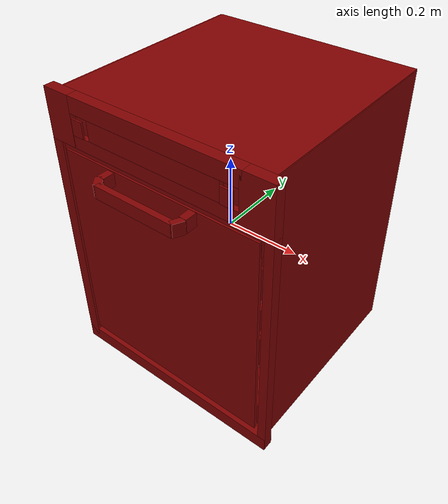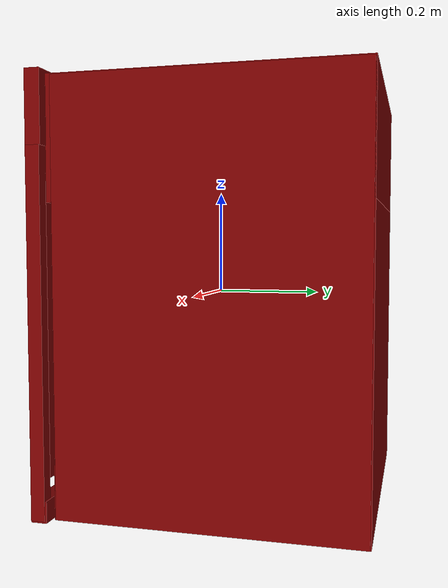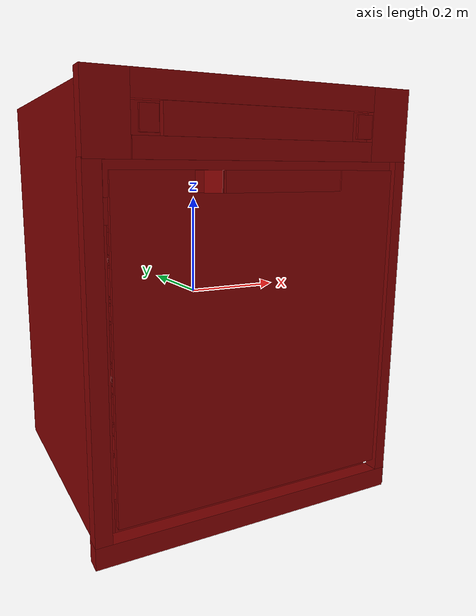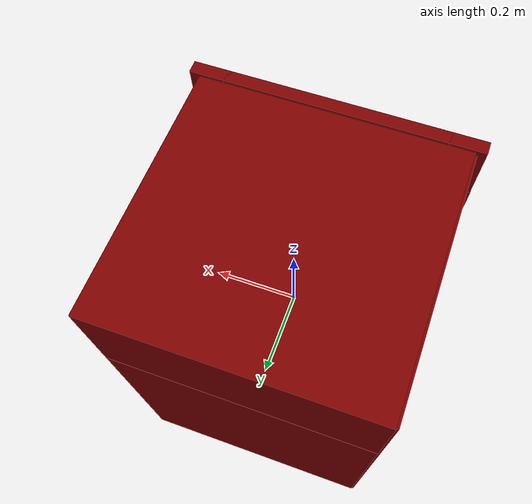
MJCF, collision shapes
<?xml version='1.0' encoding='UTF-8'?>
<mujoco model="model">
  <option timestep="0.002" gravity="0.0 0.0 -9.81"/>
  <compiler angle="radian"/>
  <asset>
    <mesh file="visuals/button_lock.obj" name="button_lock_vis"/>
    <mesh file="visuals/button_power.obj" name="button_power_vis"/>
    <mesh file="visuals/Body001.obj" name="Body001_vis"/>
    <mesh file="visuals/door.obj" name="door_vis"/>
    <mesh file="visuals/rack0.obj" name="rack0_vis"/>
    <mesh file="visuals/rack1.obj" name="rack1_vis"/>
    <texture file="visuals/T_BC001.png" name="Body001_material" type="2d"/>
    <material name="Body001_material" rgba="1 1 1 1.0" texture="Body001_material" shininess="0.2512328028678894" specular="1"/>
    <texture file="visuals/T_BC001.png" name="button_lock_material" type="2d"/>
    <material name="button_lock_material" rgba="1 1 1 1.0" texture="button_lock_material" shininess="0.2512328028678894" specular="0.3103448502657381"/>
    <texture file="visuals/T_BC001.png" name="button_power_material" type="2d"/>
    <material name="button_power_material" rgba="1 1 1 1.0" texture="button_power_material" shininess="0.2512328028678894" specular="0.3103448502657381"/>
    <texture file="visuals/T_BC001.png" name="door_material" type="2d"/>
    <material name="door_material" rgba="1 1 1 1.0" texture="door_material" shininess="0.2512328028678894" specular="1"/>
    <texture file="visuals/T_BC001.png" name="rack0_material" type="2d"/>
    <material name="rack0_material" rgba="1 1 1 1.0" texture="rack0_material" shininess="0.2512328028678894" specular="7"/>
    <texture file="visuals/T_BC001.png" name="rack1_material" type="2d"/>
    <material name="rack1_material" rgba="1 1 1 1.0" texture="rack1_material" shininess="0.2512328028678894" specular="7"/>
  </asset>
  <default>
    <default class="visual">
      <geom conaffinity="0" contype="0" group="1" type="mesh"/>
    </default>
    <default class="collision">
      <geom group="0" rgba="0.5 0 0 0.5"/>
    </default>
    <default class="spawn">
      <geom group="0" rgba="1 1 1 0.5" contype="0" conaffinity="0"/>
      <site group="0" rgba="1 1 1 0.5"/>
    </default>
    <default class="region">
      <geom group="1" conaffinity="0" contype="0" rgba="0 1 0 0"/>
    </default>
  </default>
  <worldbody>
    <body>
      <body name="object">
        <geom mesh="Body001_vis" type="mesh" solimp="0.998 0.998 0.001" solref="0.001 1" friction="0.95 0.3 0.1" class="visual" material="Body001_material"/>
        <geom class="collision" type="box" pos="0.002270948840305209 0.30219388008117676 -0.004621784668415785" size="0.2934557795524597 0.031141722574830055 0.3999965190887451" quat="1.0 0.0 0.0 0.0"/>
        <geom class="collision" type="box" pos="0.002270943485200405 0.04500756412744522 0.28445860743522644" size="0.2934557795524597 0.2883281409740448 0.11296357214450836" quat="1.0 0.0 0.0 0.0"/>
        <geom class="collision" type="box" pos="0.283699095249176 0.04893629252910614 -0.004621789325028658" size="0.013583042658865452 0.28229135274887085 0.3999965488910675" quat="1.0 0.0 0.0 0.0"/>
        <geom class="collision" type="box" pos="-0.2821372151374817 0.04735734313726425 -0.0036820757668465376" size="0.013743063434958458 0.2838580310344696 0.40093621611595154" quat="1.0 0.0 0.0 0.0"/>
        <geom class="collision" type="box" pos="0.002834443934261799 0.04775632172822952 -0.35406163334846497" size="0.29289230704307556 0.28347134590148926 0.05055676028132439" quat="1.0 0.0 0.0 0.0"/>
        <geom class="collision" type="box" pos="0.001645534299314022 -0.2566308081150055 0.38181814551353455" size="0.23946069180965424 0.014339210465550423 0.022003211081027985" quat="1.0 0.0 0.0 0.0"/>
        <geom class="collision" type="box" pos="0.001645534299314022 -0.2566308081150055 0.33316099643707275" size="0.18578501045703888 0.014339076355099678 0.02632884308695793" quat="1.0 0.0 0.0 0.0"/>
        <geom class="collision" type="box" pos="0.001645534299314022 -0.24943575263023376 0.33316099643707275" size="0.24276535212993622 0.007144160568714142 0.0263291634619236" quat="1.0 0.0 0.0 0.0"/>
        <geom class="collision" type="box" pos="0.30705559253692627 -0.257473349571228 -0.06499844789505005" size="0.011688482016324997 0.013232498429715633 0.3362135589122772" quat="1.0 0.0 0.0 0.0"/>
        <geom class="collision" type="box" pos="-0.2991386353969574 -0.25582897663116455 -0.06303557008504868" size="0.01549624465405941 0.014965040609240532 0.3371136486530304" quat="1.0 0.0 0.0 0.0"/>
        <geom class="collision" type="box" pos="0.0013974723406136036 -0.25582897663116455 -0.3842719495296478" size="0.31603240966796875 0.014965040609240532 0.020346524193882942" quat="1.0 0.0 0.0 0.0"/>
        <geom class="collision" type="box" pos="0.27595484256744385 -0.2566308379173279 0.33751824498176575" size="0.04174598306417465 0.014339236542582512 0.06630311161279678" quat="1.0 0.0 0.0 0.0"/>
        <geom class="collision" type="box" pos="-0.27554571628570557 -0.2566308379173279 0.33751824498176575" size="0.03830210119485855 0.014339236542582512 0.06630311161279678" quat="1.0 0.0 0.0 0.0"/>
        <geom class="collision" type="box" pos="0.002166450023651123 -0.2566308081150055 0.288998544216156" size="0.23795722424983978 0.014339210465550423 0.01768752932548523" quat="1.0 0.0 0.0 0.0"/>
        <geom class="collision" type="box" pos="0.002166450023651123 -0.25403892993927 0.24915501475334167" size="0.28395089507102966 0.011747335083782673 0.03424625098705292" quat="1.0 0.0 0.0 0.0"/>
        <geom class="collision" type="box" pos="-0.26278406381607056 0.0033570234663784504 -0.12307623773813248" size="0.005532166454941034 0.21645444631576538 0.0021562271285802126" quat="1.0 0.0 0.0 0.0"/>
        <geom class="collision" type="box" pos="-0.26278406381607056 0.0033570234663784504 -0.17768573760986328" size="0.005532166454941034 0.21645456552505493 0.0021562278270721436" quat="1.0 0.0 0.0 0.0"/>
        <geom class="collision" type="box" pos="-0.26278406381607056 0.0033570234663784504 -0.2356557995080948" size="0.005532166454941034 0.21645468473434448 0.002156228758394718" quat="1.0 0.0 0.0 0.0"/>
        <geom class="collision" type="box" pos="-0.26278406381607056 0.0033570234663784504 -0.06762661039829254" size="0.005532166454941034 0.21645481884479523 0.002156229689717293" quat="1.0 0.0 0.0 0.0"/>
        <geom class="collision" type="box" pos="-0.26278406381607056 0.0033570234663784504 0.03683154284954071" size="0.005532166454941034 0.21645493805408478 0.0021562303882092237" quat="1.0 0.0 0.0 0.0"/>
        <geom class="collision" type="box" pos="-0.26278406381607056 0.0033570234663784504 0.04747339338064194" size="0.005532166454941034 0.21645505726337433 0.0021562313195317984" quat="1.0 0.0 0.0 0.0"/>
        <geom class="collision" type="box" pos="-0.26278406381607056 0.0033570234663784504 0.10068264603614807" size="0.005532166454941034 0.21645517647266388 0.002156232250854373" quat="1.0 0.0 0.0 0.0"/>
        <geom class="collision" type="box" pos="-0.27026477456092834 -0.20971053838729858 -0.0668596625328064" size="0.005532166454941034 0.0021562387701123953 0.16745783388614655" quat="1.0 0.0 0.0 0.0"/>
        <geom class="collision" type="box" pos="-0.27026477456092834 0.2217143476009369 -0.0668596625328064" size="0.005532166454941034 0.002156240167096257 0.16745789349079132" quat="1.0 0.0 0.0 0.0"/>
        <geom class="collision" type="box" pos="0.26350605487823486 0.008646785281598568 -0.12307623773813248" size="0.005532199516892433 0.21645554900169373 0.002156234811991453" quat="1.0 0.0 0.0 0.0"/>
        <geom class="collision" type="box" pos="0.26350605487823486 0.008646785281598568 -0.17768573760986328" size="0.005532199516892433 0.21645566821098328 0.002156235510483384" quat="1.0 0.0 0.0 0.0"/>
        <geom class="collision" type="box" pos="0.26350605487823486 0.008646785281598568 -0.23565581440925598" size="0.005532199516892433 0.21645578742027283 0.0021562364418059587" quat="1.0 0.0 0.0 0.0"/>
        <geom class="collision" type="box" pos="0.26350605487823486 0.008646785281598568 -0.06762661039829254" size="0.005532199516892433 0.21645590662956238 0.0021562373731285334" quat="1.0 0.0 0.0 0.0"/>
        <geom class="collision" type="box" pos="0.26350605487823486 0.008646785281598568 0.03683154284954071" size="0.005532199516892433 0.21645602583885193 0.0021562380716204643" quat="1.0 0.0 0.0 0.0"/>
        <geom class="collision" type="box" pos="0.26350605487823486 0.008646785281598568 0.04747339338064194" size="0.005532199516892433 0.21645614504814148 0.002156239002943039" quat="1.0 0.0 0.0 0.0"/>
        <geom class="collision" type="box" pos="0.26350605487823486 0.008646785281598568 0.10068265348672867" size="0.005532199516892433 0.21645627915859222 0.0021562399342656136" quat="1.0 0.0 0.0 0.0"/>
        <geom class="collision" type="box" pos="0.27098673582077026 0.2217143476009369 -0.0668596625328064" size="0.005532166920602322 0.002156252972781658 0.16745832562446594" quat="1.0 0.0 0.0 0.0"/>
        <geom class="collision" type="box" pos="0.27098679542541504 -0.20971053838729858 -0.0668596625328064" size="0.005532166920602322 0.00215625436976552 0.16745838522911072" quat="1.0 0.0 0.0 0.0"/>
        <body name="button_lock">
          <joint axis="0.0 1.0 0.0" pos="-0.21002115309238434 -0.2743443250656128 0.3323754668235779" limited="true" name="button_lock_joint" range="0.0 0.004" type="slide" damping="1" frictionloss="1" armature=".01" stiffness="0.05"/>
          <geom mesh="button_lock_vis" type="mesh" solimp="0.998 0.998 0.001" solref="0.001 1" friction="0.95 0.3 0.1" class="visual" material="button_lock_material"/>
          <geom class="collision" type="box" pos="-0.21002115309238434 -0.27553072571754456 0.3323754668235779" size="0.016192251816391945 0.0023901311215013266 0.02115476503968239" quat="1.0 0.0 0.0 0.0"/>
        </body>
        <body name="button_power">
          <joint axis="0.0 1.0 0.0" pos="0.2092234045267105 -0.2743443250656128 0.3323754668235779" limited="true" name="button_power_joint" range="0.0 0.004" type="slide" damping="1" frictionloss="1" armature=".01" stiffness="0.05"/>
          <geom mesh="button_power_vis" type="mesh" solimp="0.998 0.998 0.001" solref="0.001 1" friction="0.95 0.3 0.1" class="visual" material="button_power_material"/>
          <geom class="collision" type="box" pos="0.2092234045267105 -0.27553072571754456 0.3323754668235779" size="0.016192251816391945 0.0023901311215013266 0.021154770627617836" quat="1.0 0.0 0.0 0.0"/>
        </body>
        <body name="door">
          <joint axis="1.0 0.0 0.0" pos="0.00013502946239896119 -0.26235145330429077 -0.36066174507141113" limited="true" name="door_joint" range="0.0 0.5235987755982988" type="hinge" damping="1" frictionloss="1" armature=".01" stiffness="2" springref="-2"/>
          <geom mesh="door_vis" type="mesh" solimp="0.998 0.998 0.001" solref="0.001 1" friction="0.95 0.3 0.1" class="visual" material="door_material"/>
          <geom class="collision" type="box" pos="-0.12108007073402405 -0.2888696491718292 0.23808304965496063" size="0.010053523816168308 0.01570415496826172 0.01735311932861805" quat="1.0 0.0 0.0 0.0"/>
          <geom class="collision" type="box" pos="-0.11625811457633972 -0.3146785795688629 0.23808304965496063" size="0.01003683265298605 0.015267157927155495 0.01735311932861805" quat="0.9445226192474365 0.0 0.0 0.3284463584423065"/>
          <geom class="collision" type="box" pos="0.1170012503862381 -0.28709566593170166 0.23808304965496063" size="0.010053527541458607 0.015349476598203182 0.01735311932861805" quat="1.0 0.0 0.0 0.0"/>
          <geom class="collision" type="box" pos="0.11414425075054169 -0.3152996897697449 0.23808304965496063" size="0.00786184798926115 0.015053094364702702 0.01735311932861805" quat="0.9742051362991333 0.0 0.0 -0.2256641983985901"/>
          <geom class="collision" type="box" pos="0.0012862393632531166 -0.3255290985107422 0.23808304965496063" size="0.11001329869031906 0.00799134187400341 0.01735311932861805" quat="1.0 0.0 0.0 0.0" name="door_handle_main"/>
          <geom class="collision" type="box" pos="0.006062620785087347 -0.26658323407173157 -0.041804518550634384" size="0.2794951796531677 0.00455561513081193 0.2976440489292145" quat="1.0 0.0 0.0 0.0" name="door_main"/>
        </body>
        <body name="rack0">
          <geom class="region" name="reg_rack0" type="box" pos="0.000350266695022583 0.009881153702735901 -0.17115172743797302" size="0.22662316262722015 0.18598924577236176 0.06369508802890778"/>
          <joint axis="0.0 -1.0 0.0" pos="0.0014886088902130723 0.00591316819190979 -0.1771361082792282" limited="true" name="rack0_joint" range="0.0 0.14400000000000002" type="slide" damping="1" frictionloss="1" armature=".01" stiffness="0.05"/>
          <geom mesh="rack0_vis" type="mesh" solimp="0.998 0.998 0.001" solref="0.001 1" friction="0.95 0.3 0.1" class="visual" material="rack0_material"/>
          <geom class="collision" type="box" pos="-0.0963621512055397 0.005913173779845238 -0.23199830949306488" size="0.0024885283783078194 0.19438549876213074 0.014615296386182308" quat="0.15898919105529785 -1.2307309314266179e-15 0.9872803092002869 1.3264960330161557e-07"/>
          <geom class="collision" type="box" pos="0.013931304216384888 0.005913173779845238 -0.23316852748394012" size="0.0024885283783078194 0.19438549876213074 0.014615296386182308" quat="0.24899983406066895 -2.6311786781210277e-15 0.9685035347938538 1.301269634268465e-07"/>
          <geom class="collision" type="box" pos="0.14883191883563995 0.005913173779845238 -0.23479384183883667" size="0.0024885283783078194 0.19438549876213074 0.014615295454859734" quat="0.2927439510822296 -1.3194538845307142e-14 0.9561908841133118 1.2847267782944982e-07"/>
          <geom class="collision" type="box" pos="0.19459091126918793 0.005913173779845238 -0.23428140580654144" size="0.0024885283783078194 0.19438549876213074 0.04257377237081528" quat="0.7895917296409607 -1.2440509268628417e-14 0.6136325597763062 8.244701632520446e-08"/>
          <geom class="collision" type="box" pos="0.0831272304058075 0.005913173779845238 -0.23486652970314026" size="0.0024885288439691067 0.19438549876213074 0.0634777694940567" quat="0.7705856561660767 3.3243539350339205e-14 0.6373364329338074 8.563171860487273e-08"/>
          <geom class="collision" type="box" pos="-0.041501447558403015 0.005913173779845238 -0.23223352432250977" size="0.0024885288439691067 0.19438549876213074 0.05279025435447693" quat="0.7867818474769592 5.065194344142619e-14 0.6172311902046204 8.293049802432506e-08"/>
          <geom class="collision" type="box" pos="-0.1626194566488266 0.005913173779845238 -0.22843030095100403" size="0.0024885288439691067 0.19438549876213074 0.06428566575050354" quat="0.7540631294250488 2.1524044008171435e-14 0.6568019390106201 8.824712693922265e-08"/>
          <geom class="collision" type="box" pos="0.23054438829421997 0.00591316819190979 -0.17874950170516968" size="0.002488528611138463 0.19438549876213074 0.04923447594046593" quat="1.0 0.0 0.0 0.0"/>
          <geom class="collision" type="box" pos="0.0016956562176346779 -0.1869753748178482 -0.17325755953788757" size="0.2274533212184906 0.0024885728489607573 0.06267448514699936" quat="1.0 0.0 0.0 0.0"/>
          <geom class="collision" type="box" pos="0.0016956562176346779 0.19985394179821014 -0.17325755953788757" size="0.2274533212184906 0.0024885728489607573 0.06267448514699936" quat="1.0 0.0 0.0 0.0"/>
          <geom class="collision" type="box" pos="-0.23920971155166626 0.005913160741329193 -0.12186144292354584" size="0.0024885283783078194 0.19438549876213074 0.01963345892727375" quat="1.6715887340978952e-07 0.426746666431427 6.416874498427205e-08 -0.9043712019920349"/>
          <geom class="collision" type="box" pos="0.24237048625946045 0.005913160741329193 -0.12186144292354584" size="0.0024885283783078194 0.19438549876213074 0.01963345892727375" quat="0.8787773847579956 2.109912484798363e-15 0.4772319495677948 6.412033570768472e-08"/>
          <geom class="collision" type="box" pos="0.15735438466072083 0.0059131719172000885 -0.20215296745300293" size="0.002488528611138463 0.19438549876213074 0.040634509176015854" quat="1.0 0.0 0.0 0.0"/>
          <geom class="collision" type="box" pos="0.0320236012339592 0.0059131719172000885 -0.20215296745300293" size="0.002488528611138463 0.19438549876213074 0.040634509176015854" quat="1.0 0.0 0.0 0.0"/>
          <geom class="collision" type="box" pos="-0.07470064610242844 0.0059131719172000885 -0.20109976828098297" size="0.002488528611138463 0.19438549876213074 0.040634509176015854" quat="1.0 0.0 0.0 0.0"/>
          <geom class="collision" type="box" pos="-0.1803717017173767 0.0059131719172000885 -0.200046569108963" size="0.002488528611138463 0.19438549876213074 0.040634509176015854" quat="1.0 0.0 0.0 0.0"/>
          <geom class="collision" type="box" pos="-0.22895154356956482 0.00591316819190979 -0.18423491716384888" size="0.002488528611138463 0.1943827122449875 0.055606160312891006" quat="1.0 0.0 0.0 0.0"/>
        </body>
        <body name="rack1">
          <geom class="region" name="reg_rack1" type="box" pos="0.000350266695022583 0.009881153702735901 0.05519571527838707" size="0.22662316262722015 0.18598924577236176 0.06369509175419807"/>
          <joint axis="0.0 -1.0 0.0" pos="0.0014886088902130723 0.00591316819190979 0.04921133443713188" limited="true" name="rack1_joint" range="0.0 0.27399999999999997" type="slide" damping="1" frictionloss="1" armature=".01" stiffness="0.05"/>
          <geom mesh="rack1_vis" type="mesh" solimp="0.998 0.998 0.001" solref="0.001 1" friction="0.95 0.3 0.1" class="visual" material="rack1_material"/>
          <geom class="collision" type="box" pos="-0.22895154356956482 0.00591316819190979 0.040915489196777344" size="0.002488528611138463 0.19438277184963226 0.05560619384050369" quat="1.0 0.0 0.0 0.0"/>
          <geom class="collision" type="box" pos="0.23054438829421997 0.00591316819190979 0.04640090465545654" size="0.002488528611138463 0.19438549876213074 0.04923447594046593" quat="1.0 0.0 0.0 0.0"/>
          <geom class="collision" type="box" pos="-0.1626194566488266 0.005913173779845238 -0.003279894357547164" size="0.0024885288439691067 0.19438549876213074 0.06428566575050354" quat="0.7540631294250488 2.1524044008171435e-14 0.6568019390106201 8.824712693922265e-08"/>
          <geom class="collision" type="box" pos="-0.041501447558403015 0.005913173779845238 -0.007083116099238396" size="0.0024885288439691067 0.19438549876213074 0.05279025435447693" quat="0.7867818474769592 5.065194344142619e-14 0.6172311902046204 8.293049802432506e-08"/>
          <geom class="collision" type="box" pos="0.0831272304058075 0.005913173779845238 -0.009716115891933441" size="0.0024885288439691067 0.19438549876213074 0.0634777694940567" quat="0.7705856561660767 3.3243539350339205e-14 0.6373364329338074 8.563171860487273e-08"/>
          <geom class="collision" type="box" pos="0.19459091126918793 0.005913173779845238 -0.00913100503385067" size="0.0024885283783078194 0.19438549876213074 0.04257377237081528" quat="0.7895917296409607 -1.2440509268628417e-14 0.6136325597763062 8.244701632520446e-08"/>
          <geom class="collision" type="box" pos="0.14883191883563995 0.005913173779845238 -0.009643428027629852" size="0.0024885283783078194 0.19438549876213074 0.014615295454859734" quat="0.2927439510822296 -1.3194538845307142e-14 0.9561908841133118 1.2847267782944982e-07"/>
          <geom class="collision" type="box" pos="0.013931304216384888 0.005913173779845238 -0.008018119260668755" size="0.0024885283783078194 0.19438549876213074 0.014615296386182308" quat="0.24899983406066895 -2.6311786781210277e-15 0.9685035347938538 1.301269634268465e-07"/>
          <geom class="collision" type="box" pos="-0.0963621512055397 0.005913173779845238 -0.006847897078841925" size="0.0024885283783078194 0.19438549876213074 0.014615296386182308" quat="0.15898919105529785 -1.2307309314266179e-15 0.9872803092002869 1.3264960330161557e-07"/>
          <geom class="collision" type="box" pos="-0.1803717017173767 0.0059131719172000885 0.025103837251663208" size="0.002488528611138463 0.19438549876213074 0.040634509176015854" quat="1.0 0.0 0.0 0.0"/>
          <geom class="collision" type="box" pos="-0.07470064610242844 0.0059131719172000885 0.02405063807964325" size="0.002488528611138463 0.19438549876213074 0.040634509176015854" quat="1.0 0.0 0.0 0.0"/>
          <geom class="collision" type="box" pos="0.0320236012339592 0.0059131719172000885 0.02299743890762329" size="0.002488528611138463 0.19438549876213074 0.040634509176015854" quat="1.0 0.0 0.0 0.0"/>
          <geom class="collision" type="box" pos="0.15735438466072083 0.0059131719172000885 0.02299743890762329" size="0.002488528611138463 0.19438549876213074 0.040634509176015854" quat="1.0 0.0 0.0 0.0"/>
          <geom class="collision" type="box" pos="0.24237048625946045 0.005913160741329193 0.10328896343708038" size="0.0024885283783078194 0.19438549876213074 0.01963345892727375" quat="0.8787773847579956 2.109912484798363e-15 0.4772319495677948 6.412033570768472e-08"/>
          <geom class="collision" type="box" pos="-0.23920971155166626 0.005913160741329193 0.10328896343708038" size="0.0024885283783078194 0.19438549876213074 0.01963345892727375" quat="1.6715887340978952e-07 0.426746666431427 6.416874498427205e-08 -0.9043712019920349"/>
          <geom class="collision" type="box" pos="0.0016956562176346779 0.19985394179821014 0.05189284682273865" size="0.2274533212184906 0.0024885728489607573 0.06267448514699936" quat="1.0 0.0 0.0 0.0"/>
          <geom class="collision" type="box" pos="0.0016956562176346779 -0.1869753748178482 0.05189284682273865" size="0.2274533212184906 0.0024885728489607573 0.06267448514699936" quat="1.0 0.0 0.0 0.0"/>
        </body>
        <geom class="region" name="reg_int" type="box" pos="0.0007773041725158691 0.014173552393913269 -0.06600489467382431" size="0.26933857798576355 0.25687839090824127 0.23663697391748428"/>
        <geom class="region" name="reg_main" type="box" pos="0.0 0.03109842538833618 0.0" size="0.31874412298202515 0.3022373914718628 0.404618501663208"/>
      </body>
    </body>
  </worldbody>
  <actuator>
    <motor name="button_lock_joint_actuator" joint="button_lock_joint" gear="0.5"/>
    <motor name="button_power_joint_actuator" joint="button_power_joint" gear="0.5"/>
    <motor name="door_joint_actuator" joint="door_joint" gear="0.5"/>
    <motor name="rack0_joint_actuator" joint="rack0_joint" gear="0.5"/>
    <motor name="rack1_joint_actuator" joint="rack1_joint" gear="0.5"/>
  </actuator>
</mujoco>
